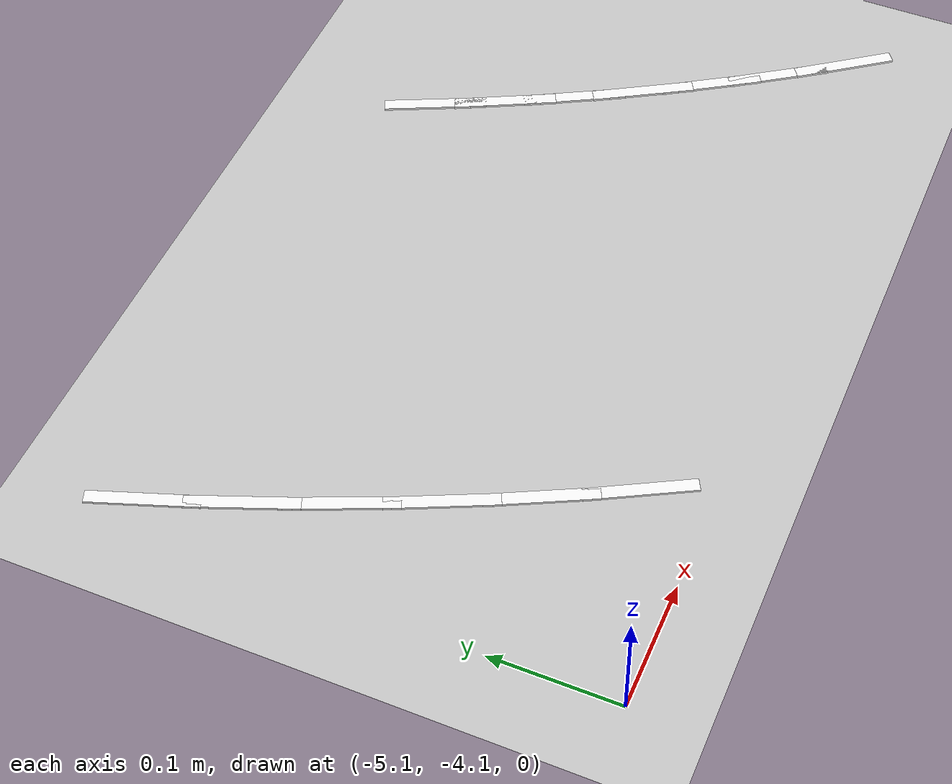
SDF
<sdf version="1.7">
 <world name="default">
  <model name="ground_plane">
   <static>1</static>
   <link name="link">
    <collision name="collision">
     <geometry><plane><normal>0 0 1</normal><size>100 100</size></plane></geometry>
     <surface>
      <contact><collide_bitmask>65535</collide_bitmask></contact>
      <friction><ode><mu>100</mu><mu2>50</mu2></ode></friction>
     </surface>
    </collision>
    <visual name="visual">
     <cast_shadows>0</cast_shadows>
     <geometry><plane><normal>0 0 1</normal><size>100 100</size></plane></geometry>
     <material>
      <script><uri>file://media/materials/scripts/gazebo.material</uri><name>Gazebo/Grey</name></script>
     </material>
    </visual>
   </link>
  </model>
  <model name="lane_line_right_360">
   <static>1</static>
   <link name="link">
    <pose>0 0 -0.004 0 -0 0</pose>
    <visual name="visual">
     <geometry><box><size>0.0841 0.01 0.01</size></box></geometry>
     <material><ambient>1 1 1 1</ambient><diffuse>1 1 1 1</diffuse></material>
    </visual>
    <collision name="collision"><geometry><box><size>0.0841 0.01 0.01</size></box></geometry></collision>
   </link>
   <pose>-5.0763 -3.72653 0 0 0 -1.2342</pose>
  </model>
  <model name="lane_line_right_361">
   <static>1</static>
   <link name="link">
    <pose>0 0 -0.004 0 -0 0</pose>
    <visual name="visual">
     <geometry><box><size>0.0841 0.01 0.01</size></box></geometry>
     <material><ambient>1 1 1 1</ambient><diffuse>1 1 1 1</diffuse></material>
    </visual>
    <collision name="collision"><geometry><box><size>0.0841 0.01 0.01</size></box></geometry></collision>
   </link>
   <pose>-5.05195 -3.7927 0 0 0 -1.20214</pose>
  </model>
  <model name="lane_line_right_362">
   <static>1</static>
   <link name="link">
    <pose>0 0 -0.004 0 -0 0</pose>
    <visual name="visual">
     <geometry><box><size>0.0841 0.01 0.01</size></box></geometry>
     <material><ambient>1 1 1 1</ambient><diffuse>1 1 1 1</diffuse></material>
    </visual>
    <collision name="collision"><geometry><box><size>0.0841 0.01 0.01</size></box></geometry></collision>
   </link>
   <pose>-5.02549 -3.85807 0 0 0 -1.17008</pose>
  </model>
  <model name="lane_line_left_363">
   <static>1</static>
   <link name="link">
    <pose>0 0 -0.004 0 -0 0</pose>
    <visual name="visual">
     <geometry><box><size>0.0841 0.01 0.01</size></box></geometry>
     <material><ambient>1 1 1 1</ambient><diffuse>1 1 1 1</diffuse></material>
    </visual>
    <collision name="collision"><geometry><box><size>0.0841 0.01 0.01</size></box></geometry></collision>
   </link>
   <pose>-4.63382 -3.75479 0 0 0 -1.13803</pose>
  </model>
  <model name="lane_line_right_363">
   <static>1</static>
   <link name="link">
    <pose>0 0 -0.004 0 -0 0</pose>
    <visual name="visual">
     <geometry><box><size>0.0841 0.01 0.01</size></box></geometry>
     <material><ambient>1 1 1 1</ambient><diffuse>1 1 1 1</diffuse></material>
    </visual>
    <collision name="collision"><geometry><box><size>0.0841 0.01 0.01</size></box></geometry></collision>
   </link>
   <pose>-4.99694 -3.92254 0 0 0 -1.13803</pose>
  </model>
  <model name="lane_line_left_364">
   <static>1</static>
   <link name="link">
    <pose>0 0 -0.004 0 -0 0</pose>
    <visual name="visual">
     <geometry><box><size>0.0841 0.01 0.01</size></box></geometry>
     <material><ambient>1 1 1 1</ambient><diffuse>1 1 1 1</diffuse></material>
    </visual>
    <collision name="collision"><geometry><box><size>0.0841 0.01 0.01</size></box></geometry></collision>
   </link>
   <pose>-4.60879 -3.80677 0 0 0 -1.10597</pose>
  </model>
  <model name="lane_line_right_364">
   <static>1</static>
   <link name="link">
    <pose>0 0 -0.004 0 -0 0</pose>
    <visual name="visual">
     <geometry><box><size>0.0841 0.01 0.01</size></box></geometry>
     <material><ambient>1 1 1 1</ambient><diffuse>1 1 1 1</diffuse></material>
    </visual>
    <collision name="collision"><geometry><box><size>0.0841 0.01 0.01</size></box></geometry></collision>
   </link>
   <pose>-4.96635 -3.98608 0 0 0 -1.10597</pose>
  </model>
  <model name="lane_line_left_365">
   <static>1</static>
   <link name="link">
    <pose>0 0 -0.004 0 -0 0</pose>
    <visual name="visual">
     <geometry><box><size>0.0841 0.01 0.01</size></box></geometry>
     <material><ambient>1 1 1 1</ambient><diffuse>1 1 1 1</diffuse></material>
    </visual>
    <collision name="collision"><geometry><box><size>0.0841 0.01 0.01</size></box></geometry></collision>
   </link>
   <pose>-4.5821 -3.85792 0 0 0 -1.07391</pose>
  </model>
  <model name="lane_line_right_365">
   <static>1</static>
   <link name="link">
    <pose>0 0 -0.004 0 -0 0</pose>
    <visual name="visual">
     <geometry><box><size>0.0841 0.01 0.01</size></box></geometry>
     <material><ambient>1 1 1 1</ambient><diffuse>1 1 1 1</diffuse></material>
    </visual>
    <collision name="collision"><geometry><box><size>0.0841 0.01 0.01</size></box></geometry></collision>
   </link>
   <pose>-4.93373 -4.04859 0 0 0 -1.07391</pose>
  </model>
  <model name="lane_line_left_366">
   <static>1</static>
   <link name="link">
    <pose>0 0 -0.004 0 -0 0</pose>
    <visual name="visual">
     <geometry><box><size>0.0841 0.01 0.01</size></box></geometry>
     <material><ambient>1 1 1 1</ambient><diffuse>1 1 1 1</diffuse></material>
    </visual>
    <collision name="collision"><geometry><box><size>0.0841 0.01 0.01</size></box></geometry></collision>
   </link>
   <pose>-4.55379 -3.90819 0 0 0 -1.04185</pose>
  </model>
  <model name="lane_line_left_367">
   <static>1</static>
   <link name="link">
    <pose>0 0 -0.004 0 -0 0</pose>
    <visual name="visual">
     <geometry><box><size>0.0841 0.01 0.01</size></box></geometry>
     <material><ambient>1 1 1 1</ambient><diffuse>1 1 1 1</diffuse></material>
    </visual>
    <collision name="collision"><geometry><box><size>0.0841 0.01 0.01</size></box></geometry></collision>
   </link>
   <pose>-4.52389 -3.95752 0 0 0 -1.0098</pose>
  </model>
  <model name="lane_line_left_368">
   <static>1</static>
   <link name="link">
    <pose>0 0 -0.004 0 -0 0</pose>
    <visual name="visual">
     <geometry><box><size>0.0841 0.01 0.01</size></box></geometry>
     <material><ambient>1 1 1 1</ambient><diffuse>1 1 1 1</diffuse></material>
    </visual>
    <collision name="collision"><geometry><box><size>0.0841 0.01 0.01</size></box></geometry></collision>
   </link>
   <pose>-4.49241 -4.00587 0 0 0 -0.977741</pose>
  </model>
  <model name="lane_line_left_369">
   <static>1</static>
   <link name="link">
    <pose>0 0 -0.004 0 -0 0</pose>
    <visual name="visual">
     <geometry><box><size>0.0841 0.01 0.01</size></box></geometry>
     <material><ambient>1 1 1 1</ambient><diffuse>1 1 1 1</diffuse></material>
    </visual>
    <collision name="collision"><geometry><box><size>0.0841 0.01 0.01</size></box></geometry></collision>
   </link>
   <pose>-4.45941 -4.05319 0 0 0 -0.945684</pose>
  </model>
 </world>
</sdf>
